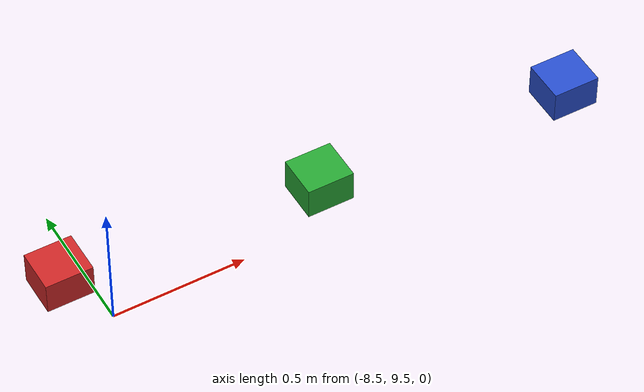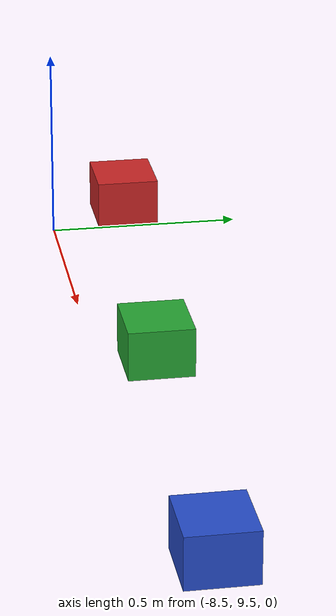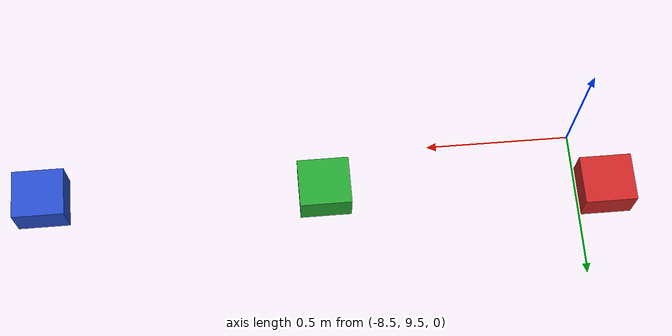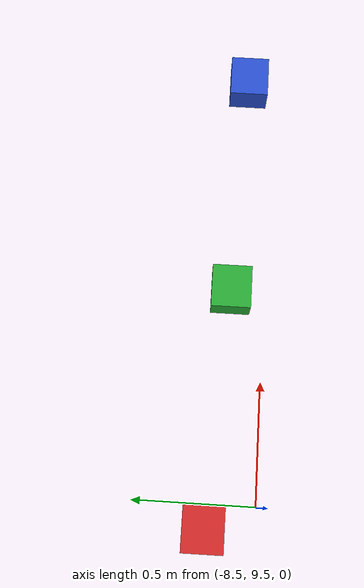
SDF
<sdf version="1.7">
 <world name="default">
  <model name="unit_box_1_clone_clone_0">
   <link name="link">
    <inertial>
     <mass>1</mass>
     <inertia>
      <ixx>0.166667</ixx>
      <ixy>0</ixy>
      <ixz>0</ixz>
      <iyy>0.166667</iyy>
      <iyz>0</iyz>
      <izz>0.166667</izz>
     </inertia>
    </inertial>
    <visual name="visual">
     <geometry><box><size>0.177426 0.164052 0.124949</size></box></geometry>
     <material>
      <script><name>Gazebo/Red</name><uri>file://media/materials/scripts/gazebo.material</uri></script>
      <shader type="pixel"><normal_map>__default__</normal_map></shader>
      <ambient>1 0 0 1</ambient>
      <diffuse>1 0 0 1</diffuse>
      <specular>0.1 0.1 0.1 1</specular>
      <emissive>0 0 0 1</emissive>
     </material>
    </visual>
    <collision name="collision">
     <geometry><box><size>0.177426 0.164052 0.124949</size></box></geometry>
     <surface>
      <friction>
       <ode><mu>1</mu><mu2>1</mu2><fdir1>0 0 0</fdir1><slip1>0</slip1><slip2>0</slip2></ode>
       <torsional>
        <coefficient>1</coefficient>
        <patch_radius>0</patch_radius>
        <surface_radius>0</surface_radius>
        <use_patch_radius>1</use_patch_radius>
        <ode><slip>0</slip></ode>
       </torsional>
      </friction>
      <bounce><restitution_coefficient>0</restitution_coefficient><threshold>1e+06</threshold></bounce>
      <contact>
       <collide_without_contact>0</collide_without_contact>
       <collide_without_contact_bitmask>1</collide_without_contact_bitmask>
       <collide_bitmask>1</collide_bitmask>
       <ode>
        <soft_cfm>0</soft_cfm>
        <soft_erp>0.2</soft_erp>
        <kp>1e+13</kp>
        <kd>1</kd>
        <max_vel>0.01</max_vel>
        <min_depth>0</min_depth>
       </ode>
       <bullet>
        <split_impulse>1</split_impulse>
        <split_impulse_penetration_threshold>-0.01</split_impulse_penetration_threshold>
        <soft_cfm>0</soft_cfm>
        <soft_erp>0.2</soft_erp>
        <kp>1e+13</kp>
        <kd>1</kd>
       </bullet>
      </contact>
     </surface>
    </collision>
   </link>
   <static>0</static>
   <pose>-8.59254 9.70746 0.062472 1e-06 -3e-06 -3e-06</pose>
  </model>
  <model name="green_box_clone_clone">
   <link name="link">
    <inertial>
     <mass>1</mass>
     <inertia>
      <ixx>0.166667</ixx>
      <ixy>0</ixy>
      <ixz>0</ixz>
      <iyy>0.166667</iyy>
      <iyz>0</iyz>
      <izz>0.166667</izz>
     </inertia>
    </inertial>
    <visual name="visual">
     <geometry><box><size>0.177426 0.164052 0.124949</size></box></geometry>
     <material>
      <script><name>Gazebo/Green</name><uri>file://media/materials/scripts/gazebo.material</uri></script>
      <shader type="pixel"><normal_map>__default__</normal_map></shader>
      <ambient>0 1 0 0</ambient>
      <diffuse>0 1 0 0</diffuse>
      <specular>0 0.1 0 0</specular>
      <emissive>0 0 0 1</emissive>
     </material>
    </visual>
    <collision name="collision">
     <geometry><box><size>0.177426 0.164052 0.124949</size></box></geometry>
     <surface>
      <friction>
       <ode><mu>1</mu><mu2>1</mu2><fdir1>0 0 0</fdir1><slip1>0</slip1><slip2>0</slip2></ode>
       <torsional>
        <coefficient>1</coefficient>
        <patch_radius>0</patch_radius>
        <surface_radius>0</surface_radius>
        <use_patch_radius>1</use_patch_radius>
        <ode><slip>0</slip></ode>
       </torsional>
      </friction>
      <bounce><restitution_coefficient>0</restitution_coefficient><threshold>1e+06</threshold></bounce>
      <contact>
       <collide_without_contact>0</collide_without_contact>
       <collide_without_contact_bitmask>1</collide_without_contact_bitmask>
       <collide_bitmask>1</collide_bitmask>
       <ode>
        <soft_cfm>0</soft_cfm>
        <soft_erp>0.2</soft_erp>
        <kp>1e+13</kp>
        <kd>1</kd>
        <max_vel>0.01</max_vel>
        <min_depth>0</min_depth>
       </ode>
       <bullet>
        <split_impulse>1</split_impulse>
        <split_impulse_penetration_threshold>-0.01</split_impulse_penetration_threshold>
        <soft_cfm>0</soft_cfm>
        <soft_erp>0.2</soft_erp>
        <kp>1e+13</kp>
        <kd>1</kd>
       </bullet>
      </contact>
     </surface>
    </collision>
   </link>
   <static>0</static>
   <pose>-7.62461 9.64249 0.062475 2e-06 3e-06 -4e-06</pose>
  </model>
  <model name="box_blue_clone_clone">
   <link name="link">
    <inertial>
     <mass>1</mass>
     <inertia>
      <ixx>0.166667</ixx>
      <ixy>0</ixy>
      <ixz>0</ixz>
      <iyy>0.166667</iyy>
      <iyz>0</iyz>
      <izz>0.166667</izz>
     </inertia>
    </inertial>
    <visual name="visual">
     <geometry><box><size>0.177426 0.164052 0.124949</size></box></geometry>
     <material>
      <script><name>Gazebo/Blue</name><uri>file://media/materials/scripts/gazebo.material</uri></script>
      <shader type="pixel"><normal_map>__default__</normal_map></shader>
      <ambient>0 0 1 1</ambient>
      <diffuse>0 0 1 1</diffuse>
      <specular>0.1 0.1 0.1 1</specular>
      <emissive>0 0 0 1</emissive>
     </material>
    </visual>
    <collision name="collision">
     <geometry><box><size>0.177426 0.164052 0.124949</size></box></geometry>
     <surface>
      <friction>
       <ode><mu>1</mu><mu2>1</mu2><fdir1>0 0 0</fdir1><slip1>0</slip1><slip2>0</slip2></ode>
       <torsional>
        <coefficient>1</coefficient>
        <patch_radius>0</patch_radius>
        <surface_radius>0</surface_radius>
        <use_patch_radius>1</use_patch_radius>
        <ode><slip>0</slip></ode>
       </torsional>
      </friction>
      <bounce><restitution_coefficient>0</restitution_coefficient><threshold>1e+06</threshold></bounce>
      <contact>
       <collide_without_contact>0</collide_without_contact>
       <collide_without_contact_bitmask>1</collide_without_contact_bitmask>
       <collide_bitmask>1</collide_bitmask>
       <ode>
        <soft_cfm>0</soft_cfm>
        <soft_erp>0.2</soft_erp>
        <kp>1e+13</kp>
        <kd>1</kd>
        <max_vel>0.01</max_vel>
        <min_depth>0</min_depth>
       </ode>
       <bullet>
        <split_impulse>1</split_impulse>
        <split_impulse_penetration_threshold>-0.01</split_impulse_penetration_threshold>
        <soft_cfm>0</soft_cfm>
        <soft_erp>0.2</soft_erp>
        <kp>1e+13</kp>
        <kd>1</kd>
       </bullet>
      </contact>
     </surface>
    </collision>
   </link>
   <static>0</static>
   <pose>-6.64864 9.60702 0.062474 1e-06 -4e-06 -6e-06</pose>
  </model>
 </world>
</sdf>
